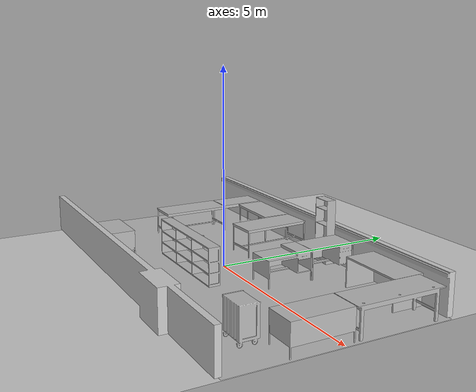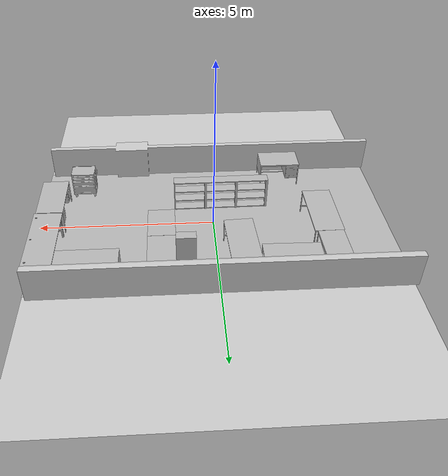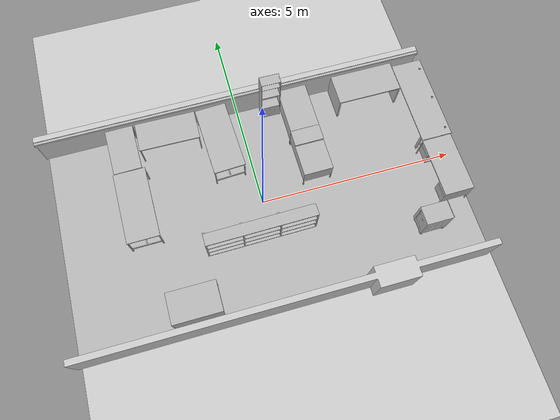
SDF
<sdf version="1.4">
 <world name="default">
  <gravity>0 0 -9.8</gravity>
  <magnetic_field>6e-06 2.3e-05 -4.2e-05</magnetic_field>
  <atmosphere type="adiabatic"/>
  <physics type="ode">
   <max_step_size>0.001</max_step_size>
   <real_time_factor>1</real_time_factor>
   <real_time_update_rate>1000</real_time_update_rate>
  </physics>
  <scene><ambient>0.4 0.4 0.4 1</ambient><background>0.7 0.7 0.7 1</background><shadows>1</shadows></scene>
  <spherical_coordinates>
   <surface_model>EARTH_WGS84</surface_model>
   <latitude_deg>0</latitude_deg>
   <longitude_deg>0</longitude_deg>
   <elevation>0</elevation>
   <heading_deg>0</heading_deg>
  </spherical_coordinates>
  <model name="gplane">
   <link name="body">
    <collision name="gplane_coll">
     <geometry><plane><normal>0 0 1</normal><size>10.075 13.18</size></plane></geometry>
     <surface><contact><ode><kp>1e+06</kp><kd>1</kd></ode></contact></surface>
     <laser_retro>2000</laser_retro>
    </collision>
    <visual name="gplane_vis">
     <geometry><plane><normal>0 0 1</normal><size>10.075 13.18</size></plane></geometry>
     <material>
      <script>
       <uri>model://base_materials/carpet/scripts</uri>
       <uri>model://base_materials/carpet/textures</uri>
       <name>carpet/carpet01</name>
      </script>
     </material>
     <cast_shadows>0</cast_shadows>
    </visual>
    <velocity_decay><linear>0</linear><angular>0</angular></velocity_decay>
   </link>
   <static>1</static>
  </model>
  <model name="Table_01">
   <link name="link_0">
    <inertial>
     <mass>14</mass>
     <inertia>
      <ixx>0.166667</ixx>
      <ixy>0</ixy>
      <ixz>0</ixz>
      <iyy>0.166667</iyy>
      <iyz>0</iyz>
      <izz>0.166667</izz>
     </inertia>
    </inertial>
    <visual name="visual">
     <geometry><mesh><uri>model://BioRoboticsLab/meshes/Table_01.dae</uri><scale>1 1 1</scale></mesh></geometry>
     <material><lighting>1</lighting><shader type="pixel"/></material>
    </visual>
    <collision name="collision">
     <geometry><mesh><uri>model://BioRoboticsLab/meshes/Table_01.dae</uri><scale>1 1 1</scale></mesh></geometry>
     <surface>
      <friction>
       <ode><mu>1</mu><mu2>1</mu2><fdir1>0 0 0</fdir1><slip1>0</slip1><slip2>0</slip2></ode>
       <torsional>
        <coefficient>1</coefficient>
        <patch_radius>0</patch_radius>
        <surface_radius>0</surface_radius>
        <use_patch_radius>1</use_patch_radius>
        <ode><slip>0</slip></ode>
       </torsional>
      </friction>
      <bounce><restitution_coefficient>0</restitution_coefficient><threshold>1e+06</threshold></bounce>
      <contact>
       <collide_without_contact>0</collide_without_contact>
       <collide_without_contact_bitmask>1</collide_without_contact_bitmask>
       <collide_bitmask>1</collide_bitmask>
       <ode>
        <soft_cfm>0</soft_cfm>
        <soft_erp>0.2</soft_erp>
        <kp>1e+13</kp>
        <kd>1</kd>
        <max_vel>0.01</max_vel>
        <min_depth>0</min_depth>
       </ode>
       <bullet>
        <split_impulse>1</split_impulse>
        <split_impulse_penetration_threshold>-0.01</split_impulse_penetration_threshold>
        <soft_cfm>0</soft_cfm>
        <soft_erp>0.2</soft_erp>
        <kp>1e+13</kp>
        <kd>1</kd>
       </bullet>
      </contact>
     </surface>
    </collision>
   </link>
   <static>1</static>
   <pose>4.62119 1.38763 0 0 -0 1.57</pose>
  </model>
  <model name="Table_02">
   <link name="link_0">
    <inertial>
     <mass>15</mass>
     <inertia>
      <ixx>0.166667</ixx>
      <ixy>0</ixy>
      <ixz>0</ixz>
      <iyy>0.166667</iyy>
      <iyz>0</iyz>
      <izz>0.166667</izz>
     </inertia>
    </inertial>
    <visual name="visual">
     <geometry><mesh><uri>model://BioRoboticsLab/meshes/Table_02.dae</uri><scale>1 1 1</scale></mesh></geometry>
     <material><lighting>1</lighting><shader type="pixel"/></material>
    </visual>
    <collision name="collision">
     <geometry><mesh><uri>model://BioRoboticsLab/meshes/Table_02.dae</uri><scale>1 1 1</scale></mesh></geometry>
     <surface>
      <friction>
       <ode><mu>1</mu><mu2>1</mu2><fdir1>0 0 0</fdir1><slip1>0</slip1><slip2>0</slip2></ode>
       <torsional>
        <coefficient>1</coefficient>
        <patch_radius>0</patch_radius>
        <surface_radius>0</surface_radius>
        <use_patch_radius>1</use_patch_radius>
        <ode><slip>0</slip></ode>
       </torsional>
      </friction>
      <bounce><restitution_coefficient>0</restitution_coefficient><threshold>1e+06</threshold></bounce>
      <contact>
       <collide_without_contact>0</collide_without_contact>
       <collide_without_contact_bitmask>1</collide_without_contact_bitmask>
       <collide_bitmask>1</collide_bitmask>
       <ode>
        <soft_cfm>0</soft_cfm>
        <soft_erp>0.2</soft_erp>
        <kp>1e+13</kp>
        <kd>1</kd>
        <max_vel>0.01</max_vel>
        <min_depth>0</min_depth>
       </ode>
       <bullet>
        <split_impulse>1</split_impulse>
        <split_impulse_penetration_threshold>-0.01</split_impulse_penetration_threshold>
        <soft_cfm>0</soft_cfm>
        <soft_erp>0.2</soft_erp>
        <kp>1e+13</kp>
        <kd>1</kd>
       </bullet>
      </contact>
     </surface>
    </collision>
   </link>
   <static>1</static>
   <pose>3.3966 2.2962 0 0 0 -3.14159</pose>
  </model>
  <model name="Table_03">
   <link name="link_0">
    <inertial>
     <mass>8</mass>
     <inertia>
      <ixx>0.166667</ixx>
      <ixy>0</ixy>
      <ixz>0</ixz>
      <iyy>0.166667</iyy>
      <iyz>0</iyz>
      <izz>0.166667</izz>
     </inertia>
    </inertial>
    <visual name="visual">
     <geometry><mesh><uri>model://BioRoboticsLab/meshes/Table_03.dae</uri><scale>1 1 1</scale></mesh></geometry>
     <material><lighting>1</lighting><shader type="pixel"/></material>
    </visual>
    <collision name="collision">
     <geometry><mesh><uri>model://BioRoboticsLab/meshes/Table_03.dae</uri><scale>1 1 1</scale></mesh></geometry>
     <surface>
      <friction>
       <ode><mu>1</mu><mu2>1</mu2><fdir1>0 0 0</fdir1><slip1>0</slip1><slip2>0</slip2></ode>
       <torsional>
        <coefficient>1</coefficient>
        <patch_radius>0</patch_radius>
        <surface_radius>0</surface_radius>
        <use_patch_radius>1</use_patch_radius>
        <ode><slip>0</slip></ode>
       </torsional>
      </friction>
      <bounce><restitution_coefficient>0</restitution_coefficient><threshold>1e+06</threshold></bounce>
      <contact>
       <collide_without_contact>0</collide_without_contact>
       <collide_without_contact_bitmask>1</collide_without_contact_bitmask>
       <collide_bitmask>1</collide_bitmask>
       <ode>
        <soft_cfm>0</soft_cfm>
        <soft_erp>0.2</soft_erp>
        <kp>1e+13</kp>
        <kd>1</kd>
        <max_vel>0.01</max_vel>
        <min_depth>0</min_depth>
       </ode>
       <bullet>
        <split_impulse>1</split_impulse>
        <split_impulse_penetration_threshold>-0.01</split_impulse_penetration_threshold>
        <soft_cfm>0</soft_cfm>
        <soft_erp>0.2</soft_erp>
        <kp>1e+13</kp>
        <kd>1</kd>
       </bullet>
      </contact>
     </surface>
    </collision>
   </link>
   <static>1</static>
   <pose>-0.655137 1.71075 0 0 -0 1.61624</pose>
  </model>
  <light name="inner_point_white1" type="point">
   <pose>4 5 4 0 -0 0</pose>
   <diffuse>0.2 0.2 0.2 1</diffuse>
   <specular>0.1 0.1 0.1 1</specular>
   <attenuation>
    <range>20</range>
    <linear>0.1</linear>
    <constant>0.2</constant>
    <quadratic>0</quadratic>
   </attenuation>
   <cast_shadows>0</cast_shadows>
   <direction>0 0 -1</direction>
   <spot><inner_angle>0</inner_angle><outer_angle>0</outer_angle><falloff>0</falloff></spot>
  </light>
  <light name="inner_point_white2" type="point">
   <pose>4 10 4 0 -0 0</pose>
   <diffuse>0.2 0.2 0.2 1</diffuse>
   <specular>0.1 0.1 0.1 1</specular>
   <attenuation>
    <range>20</range>
    <linear>0.1</linear>
    <constant>0.2</constant>
    <quadratic>0</quadratic>
   </attenuation>
   <cast_shadows>0</cast_shadows>
   <direction>0 0 -1</direction>
   <spot><inner_angle>0</inner_angle><outer_angle>0</outer_angle><falloff>0</falloff></spot>
  </light>
  <light name="inner_point_white3" type="point">
   <pose>8 5 4 0 -0 0</pose>
   <diffuse>0.2 0.2 0.2 1</diffuse>
   <specular>0.1 0.1 0.1 1</specular>
   <attenuation>
    <range>20</range>
    <linear>0.1</linear>
    <constant>0.2</constant>
    <quadratic>0</quadratic>
   </attenuation>
   <cast_shadows>0</cast_shadows>
   <direction>0 0 -1</direction>
   <spot><inner_angle>0</inner_angle><outer_angle>0</outer_angle><falloff>0</falloff></spot>
  </light>
  <light name="inner_point_white4" type="point">
   <pose>8 10 4 0 -0 0</pose>
   <diffuse>0.2 0.2 0.2 1</diffuse>
   <specular>0.1 0.1 0.1 1</specular>
   <attenuation>
    <range>20</range>
    <linear>0.1</linear>
    <constant>0.2</constant>
    <quadratic>0</quadratic>
   </attenuation>
   <cast_shadows>0</cast_shadows>
   <direction>0 0 -1</direction>
   <spot><inner_angle>0</inner_angle><outer_angle>0</outer_angle><falloff>0</falloff></spot>
  </light>
  <light name="inner_point_white5" type="point">
   <pose>4 5 4 0 -0 0</pose>
   <diffuse>0.2 0.2 0.2 1</diffuse>
   <specular>0.1 0.1 0.1 1</specular>
   <attenuation>
    <range>20</range>
    <linear>0.1</linear>
    <constant>0.2</constant>
    <quadratic>0</quadratic>
   </attenuation>
   <cast_shadows>0</cast_shadows>
   <direction>0 0 -1</direction>
   <spot><inner_angle>0</inner_angle><outer_angle>0</outer_angle><falloff>0</falloff></spot>
  </light>
  <light name="inner_point_white6" type="point">
   <pose>4 10 4 0 -0 0</pose>
   <diffuse>0.2 0.2 0.2 1</diffuse>
   <specular>0.1 0.1 0.1 1</specular>
   <attenuation>
    <range>20</range>
    <linear>0.1</linear>
    <constant>0.2</constant>
    <quadratic>0</quadratic>
   </attenuation>
   <cast_shadows>0</cast_shadows>
   <direction>0 0 -1</direction>
   <spot><inner_angle>0</inner_angle><outer_angle>0</outer_angle><falloff>0</falloff></spot>
  </light>
  <light name="inner_point_white7" type="point">
   <pose>8 5 4 0 -0 0</pose>
   <diffuse>0.2 0.2 0.2 1</diffuse>
   <specular>0.1 0.1 0.1 1</specular>
   <attenuation>
    <range>20</range>
    <linear>0.1</linear>
    <constant>0.2</constant>
    <quadratic>0</quadratic>
   </attenuation>
   <cast_shadows>0</cast_shadows>
   <direction>0 0 -1</direction>
   <spot><inner_angle>0</inner_angle><outer_angle>0</outer_angle><falloff>0</falloff></spot>
  </light>
  <light name="inner_point_white8" type="point">
   <pose>8 10 4 0 -0 0</pose>
   <diffuse>0.2 0.2 0.2 1</diffuse>
   <specular>0.1 0.1 0.1 1</specular>
   <attenuation>
    <range>20</range>
    <linear>0.1</linear>
    <constant>0.2</constant>
    <quadratic>0</quadratic>
   </attenuation>
   <cast_shadows>0</cast_shadows>
   <direction>0 0 -1</direction>
   <spot><inner_angle>0</inner_angle><outer_angle>0</outer_angle><falloff>0</falloff></spot>
  </light>
  <model name="Table_04">
   <link name="link_0">
    <inertial>
     <mass>8</mass>
     <inertia>
      <ixx>0.166667</ixx>
      <ixy>0</ixy>
      <ixz>0</ixz>
      <iyy>0.166667</iyy>
      <iyz>0</iyz>
      <izz>0.166667</izz>
     </inertia>
    </inertial>
    <visual name="visual">
     <geometry><mesh><uri>model://BioRoboticsLab/meshes/Table_04.dae</uri><scale>1 1 1</scale></mesh></geometry>
     <material><lighting>1</lighting><shader type="pixel"/></material>
    </visual>
    <collision name="collision">
     <geometry><mesh><uri>model://BioRoboticsLab/meshes/Table_04.dae</uri><scale>1 1 1</scale></mesh></geometry>
     <surface>
      <friction>
       <ode><mu>1</mu><mu2>1</mu2><fdir1>0 0 0</fdir1><slip1>0</slip1><slip2>0</slip2></ode>
       <torsional>
        <coefficient>1</coefficient>
        <patch_radius>0</patch_radius>
        <surface_radius>0</surface_radius>
        <use_patch_radius>1</use_patch_radius>
        <ode><slip>0</slip></ode>
       </torsional>
      </friction>
      <bounce><restitution_coefficient>0</restitution_coefficient><threshold>1e+06</threshold></bounce>
      <contact>
       <collide_without_contact>0</collide_without_contact>
       <collide_without_contact_bitmask>1</collide_without_contact_bitmask>
       <collide_bitmask>1</collide_bitmask>
       <ode>
        <soft_cfm>0</soft_cfm>
        <soft_erp>0.2</soft_erp>
        <kp>1e+13</kp>
        <kd>1</kd>
        <max_vel>0.01</max_vel>
        <min_depth>0</min_depth>
       </ode>
       <bullet>
        <split_impulse>1</split_impulse>
        <split_impulse_penetration_threshold>-0.01</split_impulse_penetration_threshold>
        <soft_cfm>0</soft_cfm>
        <soft_erp>0.2</soft_erp>
        <kp>1e+13</kp>
        <kd>1</kd>
       </bullet>
      </contact>
     </surface>
    </collision>
   </link>
   <static>1</static>
   <pose>-1.89388 2.2429 0 0 0 -0.017754</pose>
  </model>
  <model name="Table_05">
   <link name="link_0">
    <inertial>
     <mass>7</mass>
     <inertia>
      <ixx>0.166667</ixx>
      <ixy>0</ixy>
      <ixz>0</ixz>
      <iyy>0.166667</iyy>
      <iyz>0</iyz>
      <izz>0.166667</izz>
     </inertia>
    </inertial>
    <visual name="visual">
     <geometry><mesh><uri>model://BioRoboticsLab/meshes/Table_05.dae</uri><scale>1 1 1</scale></mesh></geometry>
     <material><lighting>1</lighting><shader type="pixel"/></material>
    </visual>
    <collision name="collision">
     <geometry><mesh><uri>model://BioRoboticsLab/meshes/Table_05.dae</uri><scale>1 1 1</scale></mesh></geometry>
     <surface>
      <friction>
       <ode><mu>1</mu><mu2>1</mu2><fdir1>0 0 0</fdir1><slip1>0</slip1><slip2>0</slip2></ode>
       <torsional>
        <coefficient>1</coefficient>
        <patch_radius>0</patch_radius>
        <surface_radius>0</surface_radius>
        <use_patch_radius>1</use_patch_radius>
        <ode><slip>0</slip></ode>
       </torsional>
      </friction>
      <bounce><restitution_coefficient>0</restitution_coefficient><threshold>1e+06</threshold></bounce>
      <contact>
       <collide_without_contact>0</collide_without_contact>
       <collide_without_contact_bitmask>1</collide_without_contact_bitmask>
       <collide_bitmask>1</collide_bitmask>
       <ode>
        <soft_cfm>0</soft_cfm>
        <soft_erp>0.2</soft_erp>
        <kp>1e+13</kp>
        <kd>1</kd>
        <max_vel>0.01</max_vel>
        <min_depth>0</min_depth>
       </ode>
       <bullet>
        <split_impulse>1</split_impulse>
        <split_impulse_penetration_threshold>-0.01</split_impulse_penetration_threshold>
        <soft_cfm>0</soft_cfm>
        <soft_erp>0.2</soft_erp>
        <kp>1e+13</kp>
        <kd>1</kd>
       </bullet>
      </contact>
     </surface>
    </collision>
   </link>
   <static>1</static>
   <pose>-3.05814 2.02214 0 0 -0 1.58727</pose>
  </model>
  <model name="Table_03_0">
   <link name="link_0">
    <inertial>
     <mass>8</mass>
     <inertia>
      <ixx>0.166667</ixx>
      <ixy>0</ixy>
      <ixz>0</ixz>
      <iyy>0.166667</iyy>
      <iyz>0</iyz>
      <izz>0.166667</izz>
     </inertia>
    </inertial>
    <visual name="visual">
     <geometry><mesh><uri>model://BioRoboticsLab/meshes/Table_03.dae</uri><scale>1 1 1</scale></mesh></geometry>
     <material><lighting>1</lighting><shader type="pixel"/></material>
    </visual>
    <collision name="collision">
     <geometry><mesh><uri>model://BioRoboticsLab/meshes/Table_03.dae</uri><scale>1 1 1</scale></mesh></geometry>
     <surface>
      <friction>
       <ode><mu>1</mu><mu2>1</mu2><fdir1>0 0 0</fdir1><slip1>0</slip1><slip2>0</slip2></ode>
       <torsional>
        <coefficient>1</coefficient>
        <patch_radius>0</patch_radius>
        <surface_radius>0</surface_radius>
        <use_patch_radius>1</use_patch_radius>
        <ode><slip>0</slip></ode>
       </torsional>
      </friction>
      <bounce><restitution_coefficient>0</restitution_coefficient><threshold>1e+06</threshold></bounce>
      <contact>
       <collide_without_contact>0</collide_without_contact>
       <collide_without_contact_bitmask>1</collide_without_contact_bitmask>
       <collide_bitmask>1</collide_bitmask>
       <ode>
        <soft_cfm>0</soft_cfm>
        <soft_erp>0.2</soft_erp>
        <kp>1e+13</kp>
        <kd>1</kd>
        <max_vel>0.01</max_vel>
        <min_depth>0</min_depth>
       </ode>
       <bullet>
        <split_impulse>1</split_impulse>
        <split_impulse_penetration_threshold>-0.01</split_impulse_penetration_threshold>
        <soft_cfm>0</soft_cfm>
        <soft_erp>0.2</soft_erp>
        <kp>1e+13</kp>
        <kd>1</kd>
       </bullet>
      </contact>
     </surface>
    </collision>
   </link>
   <static>1</static>
   <pose>-3.02131 0.512496 0 0 0 -1.56459</pose>
  </model>
  <model name="ToolBox_red">
   <link name="link_0">
    <inertial>
     <mass>20</mass>
     <inertia>
      <ixx>0.166667</ixx>
      <ixy>0</ixy>
      <ixz>0</ixz>
      <iyy>0.166667</iyy>
      <iyz>0</iyz>
      <izz>0.166667</izz>
     </inertia>
     <pose>0 0 0.5 0 -0 0</pose>
    </inertial>
    <visual name="visual">
     <geometry><mesh><uri>model://BioRoboticsLab/meshes/ToolBox_red.dae</uri><scale>1 1 1</scale></mesh></geometry>
     <material><lighting>1</lighting><shader type="pixel"/></material>
    </visual>
    <collision name="collision">
     <geometry><mesh><uri>model://BioRoboticsLab/meshes/ToolBox_red.dae</uri><scale>1 1 1</scale></mesh></geometry>
     <surface>
      <friction>
       <ode><mu>1</mu><mu2>1</mu2><fdir1>0 0 0</fdir1><slip1>0</slip1><slip2>0</slip2></ode>
       <torsional>
        <coefficient>1</coefficient>
        <patch_radius>0</patch_radius>
        <surface_radius>0</surface_radius>
        <use_patch_radius>1</use_patch_radius>
        <ode><slip>0</slip></ode>
       </torsional>
      </friction>
      <bounce><restitution_coefficient>0</restitution_coefficient><threshold>1e+06</threshold></bounce>
      <contact>
       <collide_without_contact>0</collide_without_contact>
       <collide_without_contact_bitmask>1</collide_without_contact_bitmask>
       <collide_bitmask>1</collide_bitmask>
       <ode>
        <soft_cfm>0</soft_cfm>
        <soft_erp>0.2</soft_erp>
        <kp>1e+13</kp>
        <kd>1</kd>
        <max_vel>0.01</max_vel>
        <min_depth>0</min_depth>
       </ode>
       <bullet>
        <split_impulse>1</split_impulse>
        <split_impulse_penetration_threshold>-0.01</split_impulse_penetration_threshold>
        <soft_cfm>0</soft_cfm>
        <soft_erp>0.2</soft_erp>
        <kp>1e+13</kp>
        <kd>1</kd>
       </bullet>
      </contact>
     </surface>
    </collision>
   </link>
   <static>0</static>
   <pose>3.83799 -1.65909 -0.000651 2.1e-05 -0 0</pose>
  </model>
  <model name="Desk_01">
   <link name="link_0">
    <inertial>
     <mass>35</mass>
     <inertia>
      <ixx>0.166667</ixx>
      <ixy>0</ixy>
      <ixz>0</ixz>
      <iyy>0.166667</iyy>
      <iyz>0</iyz>
      <izz>0.166667</izz>
     </inertia>
    </inertial>
    <visual name="visual">
     <geometry><mesh><uri>model://BioRoboticsLab/meshes/Desk_01.dae</uri><scale>1 1 1</scale></mesh></geometry>
     <material><lighting>1</lighting><shader type="pixel"/></material>
    </visual>
    <collision name="collision">
     <geometry><mesh><uri>model://BioRoboticsLab/meshes/Desk_01.dae</uri><scale>1 1 1</scale></mesh></geometry>
     <surface>
      <friction>
       <ode><mu>1</mu><mu2>1</mu2><fdir1>0 0 0</fdir1><slip1>0</slip1><slip2>0</slip2></ode>
       <torsional>
        <coefficient>1</coefficient>
        <patch_radius>0</patch_radius>
        <surface_radius>0</surface_radius>
        <use_patch_radius>1</use_patch_radius>
        <ode><slip>0</slip></ode>
       </torsional>
      </friction>
      <bounce><restitution_coefficient>0</restitution_coefficient><threshold>1e+06</threshold></bounce>
      <contact>
       <collide_without_contact>0</collide_without_contact>
       <collide_without_contact_bitmask>1</collide_without_contact_bitmask>
       <collide_bitmask>1</collide_bitmask>
       <ode>
        <soft_cfm>0</soft_cfm>
        <soft_erp>0.2</soft_erp>
        <kp>1e+13</kp>
        <kd>1</kd>
        <max_vel>0.01</max_vel>
        <min_depth>0</min_depth>
       </ode>
       <bullet>
        <split_impulse>1</split_impulse>
        <split_impulse_penetration_threshold>-0.01</split_impulse_penetration_threshold>
        <soft_cfm>0</soft_cfm>
        <soft_erp>0.2</soft_erp>
        <kp>1e+13</kp>
        <kd>1</kd>
       </bullet>
      </contact>
     </surface>
    </collision>
   </link>
   <static>1</static>
   <pose>4.60448 -0.497618 0 0 -0 1.57832</pose>
  </model>
  <model name="Desk_02">
   <link name="link_0">
    <inertial>
     <mass>19</mass>
     <inertia>
      <ixx>0.166667</ixx>
      <ixy>0</ixy>
      <ixz>0</ixz>
      <iyy>0.166667</iyy>
      <iyz>0</iyz>
      <izz>0.166667</izz>
     </inertia>
    </inertial>
    <visual name="visual">
     <geometry><mesh><uri>model://BioRoboticsLab/meshes/Desk_02.dae</uri><scale>1 1 1</scale></mesh></geometry>
     <material><lighting>1</lighting><shader type="pixel"/></material>
    </visual>
    <collision name="collision">
     <geometry><mesh><uri>model://BioRoboticsLab/meshes/Desk_02.dae</uri><scale>1 1 1</scale></mesh></geometry>
     <surface>
      <friction>
       <ode><mu>1</mu><mu2>1</mu2><fdir1>0 0 0</fdir1><slip1>0</slip1><slip2>0</slip2></ode>
       <torsional>
        <coefficient>1</coefficient>
        <patch_radius>0</patch_radius>
        <surface_radius>0</surface_radius>
        <use_patch_radius>1</use_patch_radius>
        <ode><slip>0</slip></ode>
       </torsional>
      </friction>
      <bounce><restitution_coefficient>0</restitution_coefficient><threshold>1e+06</threshold></bounce>
      <contact>
       <collide_without_contact>0</collide_without_contact>
       <collide_without_contact_bitmask>1</collide_without_contact_bitmask>
       <collide_bitmask>1</collide_bitmask>
       <ode>
        <soft_cfm>0</soft_cfm>
        <soft_erp>0.2</soft_erp>
        <kp>1e+13</kp>
        <kd>1</kd>
        <max_vel>0.01</max_vel>
        <min_depth>0</min_depth>
       </ode>
       <bullet>
        <split_impulse>1</split_impulse>
        <split_impulse_penetration_threshold>-0.01</split_impulse_penetration_threshold>
        <soft_cfm>0</soft_cfm>
        <soft_erp>0.2</soft_erp>
        <kp>1e+13</kp>
        <kd>1</kd>
       </bullet>
      </contact>
     </surface>
    </collision>
   </link>
   <static>1</static>
   <pose>1.4839 0.938157 0 0 0 -1.56403</pose>
  </model>
  <model name="Desk_03">
   <link name="link_0">
    <inertial>
     <mass>25</mass>
     <inertia>
      <ixx>0.166667</ixx>
      <ixy>0</ixy>
      <ixz>0</ixz>
      <iyy>0.166667</iyy>
      <iyz>0</iyz>
      <izz>0.166667</izz>
     </inertia>
    </inertial>
    <visual name="visual">
     <geometry><mesh><uri>model://BioRoboticsLab/meshes/Desk_03.dae</uri><scale>1 1 1</scale></mesh></geometry>
     <material><lighting>1</lighting><shader type="pixel"/></material>
    </visual>
    <collision name="collision">
     <geometry><mesh><uri>model://BioRoboticsLab/meshes/Desk_03.dae</uri><scale>1 1 1</scale></mesh></geometry>
     <surface>
      <friction>
       <ode><mu>1</mu><mu2>1</mu2><fdir1>0 0 0</fdir1><slip1>0</slip1><slip2>0</slip2></ode>
       <torsional>
        <coefficient>1</coefficient>
        <patch_radius>0</patch_radius>
        <surface_radius>0</surface_radius>
        <use_patch_radius>1</use_patch_radius>
        <ode><slip>0</slip></ode>
       </torsional>
      </friction>
      <bounce><restitution_coefficient>0</restitution_coefficient><threshold>1e+06</threshold></bounce>
      <contact>
       <collide_without_contact>0</collide_without_contact>
       <collide_without_contact_bitmask>1</collide_without_contact_bitmask>
       <collide_bitmask>1</collide_bitmask>
       <ode>
        <soft_cfm>0</soft_cfm>
        <soft_erp>0.2</soft_erp>
        <kp>1e+13</kp>
        <kd>1</kd>
        <max_vel>0.01</max_vel>
        <min_depth>0</min_depth>
       </ode>
       <bullet>
        <split_impulse>1</split_impulse>
        <split_impulse_penetration_threshold>-0.01</split_impulse_penetration_threshold>
        <soft_cfm>0</soft_cfm>
        <soft_erp>0.2</soft_erp>
        <kp>1e+13</kp>
        <kd>1</kd>
       </bullet>
      </contact>
     </surface>
    </collision>
   </link>
   <static>1</static>
   <pose>1.48162 1.99255 0 0 0 -1.56804</pose>
  </model>
  <model name="Desk_04">
   <link name="link_0">
    <inertial>
     <mass>15</mass>
     <inertia>
      <ixx>0.166667</ixx>
      <ixy>0</ixy>
      <ixz>0</ixz>
      <iyy>0.166667</iyy>
      <iyz>0</iyz>
      <izz>0.166667</izz>
     </inertia>
    </inertial>
    <visual name="visual">
     <geometry><mesh><uri>model://BioRoboticsLab/meshes/Desk_04.dae</uri><scale>1 1 1</scale></mesh></geometry>
     <material><lighting>1</lighting><shader type="pixel"/></material>
    </visual>
    <collision name="collision">
     <geometry><mesh><uri>model://BioRoboticsLab/meshes/Desk_04.dae</uri><scale>1 1 1</scale></mesh></geometry>
     <surface>
      <friction>
       <ode><mu>1</mu><mu2>1</mu2><fdir1>0 0 0</fdir1><slip1>0</slip1><slip2>0</slip2></ode>
       <torsional>
        <coefficient>1</coefficient>
        <patch_radius>0</patch_radius>
        <surface_radius>0</surface_radius>
        <use_patch_radius>1</use_patch_radius>
        <ode><slip>0</slip></ode>
       </torsional>
      </friction>
      <bounce><restitution_coefficient>0</restitution_coefficient><threshold>1e+06</threshold></bounce>
      <contact>
       <collide_without_contact>0</collide_without_contact>
       <collide_without_contact_bitmask>1</collide_without_contact_bitmask>
       <collide_bitmask>1</collide_bitmask>
       <ode>
        <soft_cfm>0</soft_cfm>
        <soft_erp>0.2</soft_erp>
        <kp>1e+13</kp>
        <kd>1</kd>
        <max_vel>0.01</max_vel>
        <min_depth>0</min_depth>
       </ode>
       <bullet>
        <split_impulse>1</split_impulse>
        <split_impulse_penetration_threshold>-0.01</split_impulse_penetration_threshold>
        <soft_cfm>0</soft_cfm>
        <soft_erp>0.2</soft_erp>
        <kp>1e+13</kp>
        <kd>1</kd>
       </bullet>
      </contact>
     </surface>
    </collision>
   </link>
   <static>1</static>
   <pose>-2.19478 -2.11643 0 0 -0 0</pose>
  </model>
  <model name="Shelf_01_center">
   <link name="link_0">
    <inertial>
     <mass>30</mass>
     <inertia>
      <ixx>0.166667</ixx>
      <ixy>0</ixy>
      <ixz>0</ixz>
      <iyy>0.166667</iyy>
      <iyz>0</iyz>
      <izz>0.166667</izz>
     </inertia>
    </inertial>
    <visual name="visual">
     <geometry>
      <mesh><uri>model://BioRoboticsLab/meshes/Shelf_1_center.dae</uri><scale>1 1 1</scale></mesh>
     </geometry>
     <material><lighting>1</lighting><shader type="pixel"/></material>
    </visual>
    <collision name="collision">
     <geometry>
      <mesh><uri>model://BioRoboticsLab/meshes/Shelf_1_center.dae</uri><scale>1 1 1</scale></mesh>
     </geometry>
     <surface>
      <friction>
       <ode><mu>1</mu><mu2>1</mu2><fdir1>0 0 0</fdir1><slip1>0</slip1><slip2>0</slip2></ode>
       <torsional>
        <coefficient>1</coefficient>
        <patch_radius>0</patch_radius>
        <surface_radius>0</surface_radius>
        <use_patch_radius>1</use_patch_radius>
        <ode><slip>0</slip></ode>
       </torsional>
      </friction>
      <bounce><restitution_coefficient>0</restitution_coefficient><threshold>1e+06</threshold></bounce>
      <contact>
       <collide_without_contact>0</collide_without_contact>
       <collide_without_contact_bitmask>1</collide_without_contact_bitmask>
       <collide_bitmask>1</collide_bitmask>
       <ode>
        <soft_cfm>0</soft_cfm>
        <soft_erp>0.2</soft_erp>
        <kp>1e+13</kp>
        <kd>1</kd>
        <max_vel>0.01</max_vel>
        <min_depth>0</min_depth>
       </ode>
       <bullet>
        <split_impulse>1</split_impulse>
        <split_impulse_penetration_threshold>-0.01</split_impulse_penetration_threshold>
        <soft_cfm>0</soft_cfm>
        <soft_erp>0.2</soft_erp>
        <kp>1e+13</kp>
        <kd>1</kd>
       </bullet>
      </contact>
     </surface>
    </collision>
   </link>
   <static>1</static>
   <pose>-0.276716 -0.818783 0 0 -0 0.008618</pose>
  </model>
  <model name="Shelf_02">
   <link name="link_0">
    <inertial>
     <mass>12</mass>
     <inertia>
      <ixx>0.166667</ixx>
      <ixy>0</ixy>
      <ixz>0</ixz>
      <iyy>0.166667</iyy>
      <iyz>0</iyz>
      <izz>0.166667</izz>
     </inertia>
    </inertial>
    <visual name="visual">
     <geometry><mesh><uri>model://BioRoboticsLab/meshes/Shelf_02.dae</uri><scale>1 1 1</scale></mesh></geometry>
     <material><lighting>1</lighting><shader type="pixel"/></material>
    </visual>
    <collision name="collision">
     <geometry><mesh><uri>model://BioRoboticsLab/meshes/Shelf_02.dae</uri><scale>1 1 1</scale></mesh></geometry>
     <surface>
      <friction>
       <ode><mu>1</mu><mu2>1</mu2><fdir1>0 0 0</fdir1><slip1>0</slip1><slip2>0</slip2></ode>
       <torsional>
        <coefficient>1</coefficient>
        <patch_radius>0</patch_radius>
        <surface_radius>0</surface_radius>
        <use_patch_radius>1</use_patch_radius>
        <ode><slip>0</slip></ode>
       </torsional>
      </friction>
      <bounce><restitution_coefficient>0</restitution_coefficient><threshold>1e+06</threshold></bounce>
      <contact>
       <collide_without_contact>0</collide_without_contact>
       <collide_without_contact_bitmask>1</collide_without_contact_bitmask>
       <collide_bitmask>1</collide_bitmask>
       <ode>
        <soft_cfm>0</soft_cfm>
        <soft_erp>0.2</soft_erp>
        <kp>1e+13</kp>
        <kd>1</kd>
        <max_vel>0.01</max_vel>
        <min_depth>0</min_depth>
       </ode>
       <bullet>
        <split_impulse>1</split_impulse>
        <split_impulse_penetration_threshold>-0.01</split_impulse_penetration_threshold>
        <soft_cfm>0</soft_cfm>
        <soft_erp>0.2</soft_erp>
        <kp>1e+13</kp>
        <kd>1</kd>
       </bullet>
      </contact>
     </surface>
    </collision>
   </link>
   <static>1</static>
   <pose>0.857254 2.45 0 0 -0 3.1318</pose>
  </model>
  <model name="Lab_Mesh">
   <link name="link_0">
    <inertial>
     <mass>100000</mass>
     <inertia>
      <ixx>0.166667</ixx>
      <ixy>0</ixy>
      <ixz>0</ixz>
      <iyy>0.166667</iyy>
      <iyz>0</iyz>
      <izz>0.166667</izz>
     </inertia>
    </inertial>
    <visual name="visual">
     <geometry><mesh><uri>model://BioRoboticsLab/meshes/Lab_Mesh.dae</uri><scale>1 1 1</scale></mesh></geometry>
     <material><lighting>1</lighting><shader type="pixel"/></material>
    </visual>
    <collision name="collision">
     <geometry><mesh><uri>model://BioRoboticsLab/meshes/Lab_Mesh.dae</uri><scale>1 1 1</scale></mesh></geometry>
     <surface>
      <friction>
       <ode><mu>1</mu><mu2>1</mu2><fdir1>0 0 0</fdir1><slip1>0</slip1><slip2>0</slip2></ode>
       <torsional>
        <coefficient>1</coefficient>
        <patch_radius>0</patch_radius>
        <surface_radius>0</surface_radius>
        <use_patch_radius>1</use_patch_radius>
        <ode><slip>0</slip></ode>
       </torsional>
      </friction>
      <bounce><restitution_coefficient>0</restitution_coefficient><threshold>1e+06</threshold></bounce>
      <contact>
       <collide_without_contact>0</collide_without_contact>
       <collide_without_contact_bitmask>1</collide_without_contact_bitmask>
       <collide_bitmask>1</collide_bitmask>
       <ode>
        <soft_cfm>0</soft_cfm>
        <soft_erp>0.2</soft_erp>
        <kp>1e+13</kp>
        <kd>1</kd>
        <max_vel>0.01</max_vel>
        <min_depth>0</min_depth>
       </ode>
       <bullet>
        <split_impulse>1</split_impulse>
        <split_impulse_penetration_threshold>-0.01</split_impulse_penetration_threshold>
        <soft_cfm>0</soft_cfm>
        <soft_erp>0.2</soft_erp>
        <kp>1e+13</kp>
        <kd>1</kd>
       </bullet>
      </contact>
     </surface>
    </collision>
   </link>
   <static>1</static>
   <pose>-0.092622 0.025231 0 0 -0 0</pose>
  </model>
  <model name="Lab_Floor">
   <link name="link_0">
    <inertial>
     <mass>1</mass>
     <inertia>
      <ixx>0.166667</ixx>
      <ixy>0</ixy>
      <ixz>0</ixz>
      <iyy>0.166667</iyy>
      <iyz>0</iyz>
      <izz>0.166667</izz>
     </inertia>
    </inertial>
    <visual name="visual">
     <geometry><mesh><uri>model://BioRoboticsLab/meshes/Lab_Floor.dae</uri><scale>1 1 1</scale></mesh></geometry>
     <material><lighting>1</lighting><shader type="pixel"/></material>
    </visual>
   </link>
   <static>1</static>
   <pose>0 0 0.005 0 -0 0</pose>
  </model>
 </world>
</sdf>
